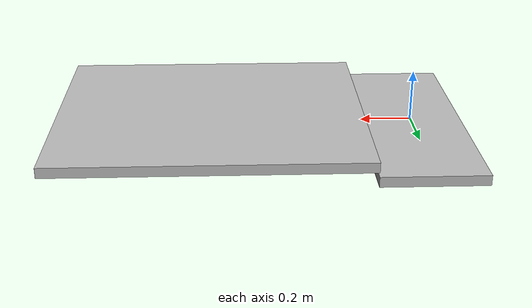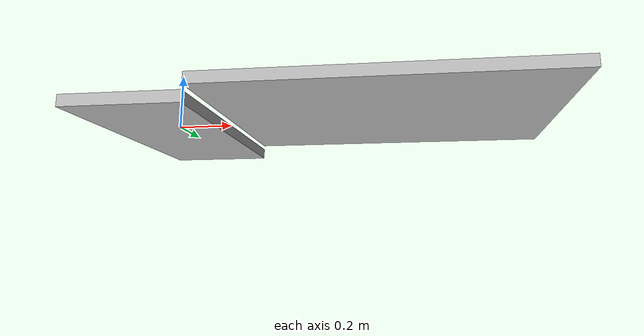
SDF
<?xml version="1.0"?>
<sdf version="1.8">
  <model name="table">
    <link name="table_base">
      <inertial>
        <pose>0.8 0 0.057 0 0 0</pose>
        <mass>1</mass>
        <inertia>
            <ixx>0.0835</ixx>
            <ixy>0</ixy>
            <ixz>0</ixz>
            <iyy>0.1667</iyy>
            <iyz>0</iyz>
            <izz>0.0835</izz>
        </inertia>
      </inertial>
      <visual name="base_visual">
        <pose>0 0 -0.02 0 0 0</pose>
        <geometry>
          <box>
            <size>0.4 1.0 0.04</size>
          </box>
        </geometry>
      </visual>
    </link>

    <joint name="weld_joint" type="fixed">
      <pose>0.0 0 0 0 0 0</pose>
      <parent>table_base</parent>
      <child>platform</child>
    </joint>

    <link name="platform">
      <pose>0.8 0 0.057 0 0 0</pose>
      <inertial>
        <pose>0 0 0 0 0 0</pose>
        <mass>1</mass>
        <inertia>
            <ixx>0.0835</ixx>
            <ixy>0</ixy>
            <ixz>0</ixz>
            <iyy>0.1667</iyy>
            <iyz>0</iyz>
            <izz>0.0835</izz>
        </inertia>
      </inertial>
      <visual name="platform_visual">
        <pose>0 0 -0.02 0 0 0</pose>
        <geometry>
          <box>
            <size>1.2 1.0 0.04</size>
          </box>
        </geometry>
      </visual>
      <collision name="platform_collision">
        <pose>0 0 -0.02 0 0 0</pose>
        <geometry>
          <box>
            <size>1.2 1.0 0.04</size>
          </box>
        </geometry>
        <drake:proximity_properties>
          <drake:rigid_hydroelastic/>
          <drake:mesh_resolution_hint>0.02</drake:mesh_resolution_hint>
          <drake:mu_static>0.1</drake:mu_static>
          <drake:mu_dynamic>0.1</drake:mu_dynamic>
          <drake:relaxation_time>0.1</drake:relaxation_time>
        </drake:proximity_properties>
      </collision>
    </link>

  </model>
</sdf>
